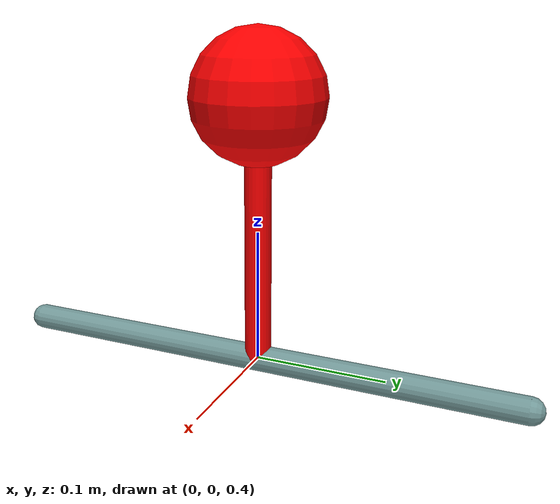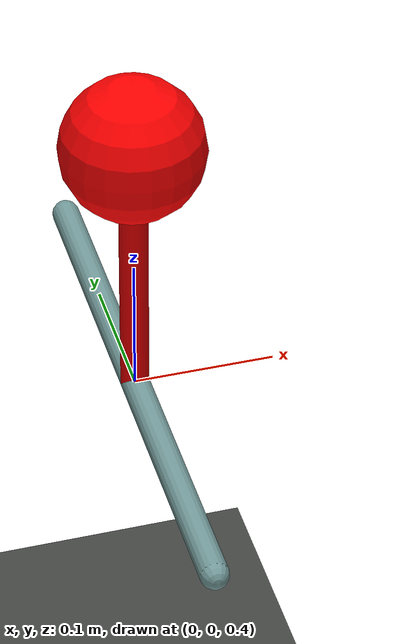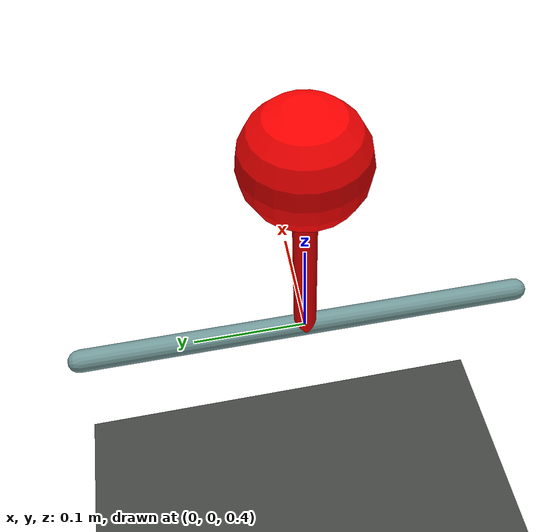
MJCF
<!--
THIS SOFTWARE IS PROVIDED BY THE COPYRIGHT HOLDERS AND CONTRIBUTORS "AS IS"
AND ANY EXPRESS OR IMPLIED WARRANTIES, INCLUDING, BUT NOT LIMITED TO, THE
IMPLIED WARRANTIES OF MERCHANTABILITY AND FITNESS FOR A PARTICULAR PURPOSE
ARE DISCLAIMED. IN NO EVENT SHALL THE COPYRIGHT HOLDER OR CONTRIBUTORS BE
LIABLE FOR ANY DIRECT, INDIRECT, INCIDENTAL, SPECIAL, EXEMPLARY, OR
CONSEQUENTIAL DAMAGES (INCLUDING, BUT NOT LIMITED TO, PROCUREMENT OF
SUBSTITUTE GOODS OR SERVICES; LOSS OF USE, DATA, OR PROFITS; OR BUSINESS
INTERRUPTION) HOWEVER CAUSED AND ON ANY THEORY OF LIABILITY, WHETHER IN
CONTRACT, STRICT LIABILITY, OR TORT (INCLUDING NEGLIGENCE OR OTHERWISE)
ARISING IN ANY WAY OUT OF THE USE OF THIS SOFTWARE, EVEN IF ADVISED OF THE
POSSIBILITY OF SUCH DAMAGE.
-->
<mujoco model="inverted pendulum">
	<compiler 	angle="radian"/>

	<option	timestep="0.001"
			iterations="20">
		<flag sensornoise="enable"/>
	</option>

	<default>
	<geom  rgba="0.45 0.6 0.6 1"/>
		<site type="sphere" size="0.02"/>
	</default>
	<worldbody>

		<light directional="false" cutoff="4" exponent="20" diffuse="1 1 1" specular="0 0 0" pos=".9 .3 2.5" dir="-.9 -.3 -2.5 "/>

		<!-- ======= Ground ======= -->
		<geom name="ground" type="plane" pos="0 0 0" size="0.5 1 2" rgba=" .25 .26 .25 1"/>

		<!-- ======= Beam ======= -->
		<body name="beam" pos="0 0 .5">
			<!--density of the rod is ten times smaller than other objects (e.g. the ball) for a better point mass approximation-->
            <geom name="rod" type="cylinder" pos="0 0 0.0" size=".01 .1" density="100" rgba ="1 0. 0. 1"/>
			<geom pos="0 0 -.1" type="capsule" size=".01 .2" euler="1.57 0 0"/>
			<joint name="pivot" pos="0 0 -0.1" axis="0 1 0" limited="false" damping=".05"/>
			<body name="ballbody" pos="0 0 0.1">
				<geom name="ballgeom" type="sphere" size=".05" rgba="1. 0. 0. 1."/>
			</body>
		</body>
	</worldbody>

	<actuator>
        <motor joint='pivot' name='motor' gear="1" forcelimited="true" forcerange="-10 10"/>
	</actuator>

	<sensor>
		<jointpos name="encoder" joint="pivot" noise="0.001"/>
	</sensor>
</mujoco>
